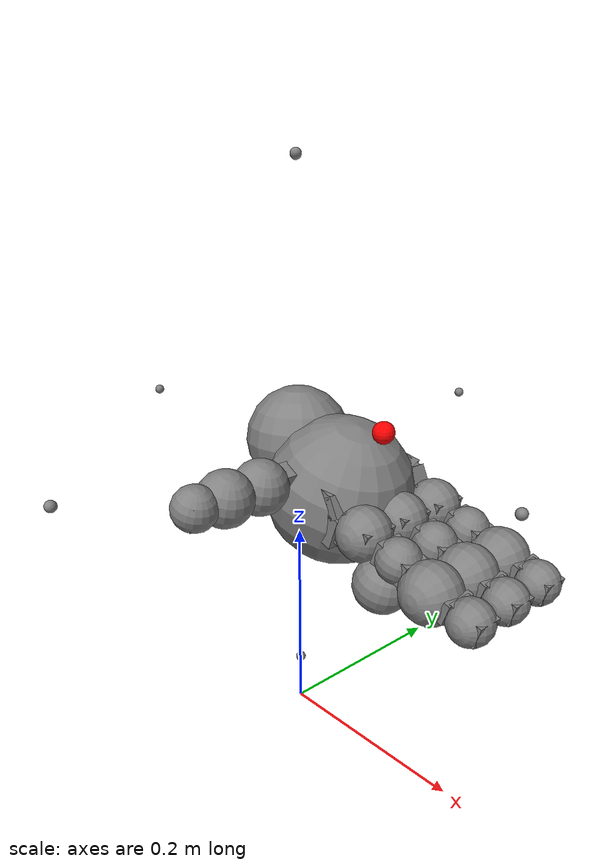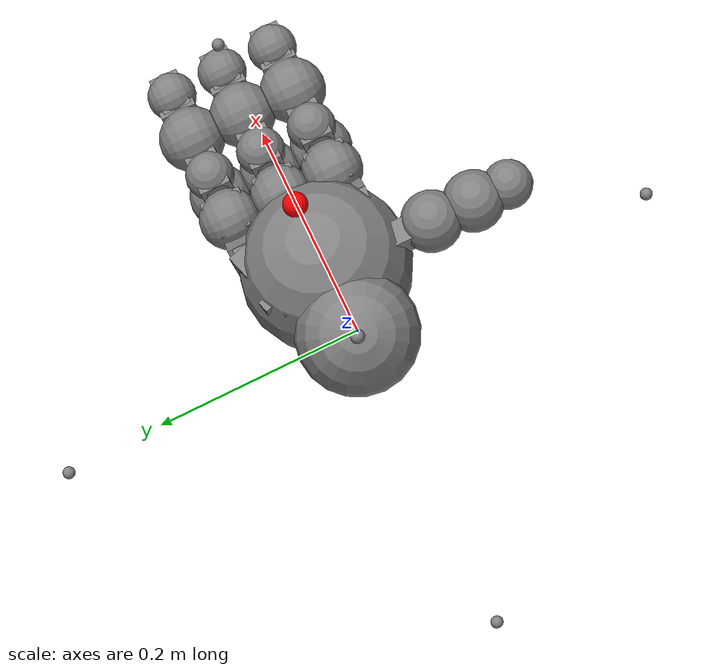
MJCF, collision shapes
<mujoco model="leap_rh_fabric_freejoint">
  <compiler angle="radian" autolimits="true" assetdir="../meshes/leap"/>

  <option timestep="0.01" integrator="implicitfast" cone="elliptic" impratio="100"/>

  <custom>
    <numeric data="30" name="max_contact_points"/>
    <numeric data="12" name="max_geom_pairs"/>
  </custom>

  <asset>
    <material name="black" rgba="0.2 0.2 0.2 1"/>
    <material name="gray" rgba="0.5 0.5 0.5 1"/>
    <mesh name="leap_mount" file="leap_mount.obj"/>

    <mesh name="palm" file="palm_right.obj"/>
    <mesh name="base" file="base.obj"/>
    <mesh name="proximal" file="proximal.obj"/>
    <mesh name="medial" file="medial.obj"/>
    <mesh name="distal" file="distal.obj"/>
    <mesh name="tip" file="tip.obj"/>
    <mesh name="thumb_base" file="thumb_base.obj"/>
    <mesh name="thumb_proximal" file="thumb_proximal.obj"/>
    <mesh name="thumb_distal" file="thumb_distal.obj"/>
    <mesh name="thumb_tip" file="thumb_tip.obj"/>
  </asset>

  <default>
    <default class="leap_rh">
      <geom group="3" friction="0.2" solref="0.02 1.5" solimp="0.9 0.99 0.001"/>
      <default class="visual">
        <geom group="2" type="mesh" contype="0" conaffinity="0" density="0" material="black"/>
      </default>
      <default class="tip">
        <geom size="0.01 0.012 0.016" pos="-0.0012969 -0.0335524 0.0145207"
              quat="0.703552 0.709596 -0.0292107 -0.0252203" type="box" friction="0.7 0.05 0.0002" rgba=".5 .5 .5 .3"/>
      </default>
      <default class="thumb_tip">
        <geom size="0.01 0.012 0.016" pos="-0.00127744 -0.0455619 -0.0144774"
              quat="0.708101 0.705072 -0.0294902 -0.024426" type="box" friction="0.7 0.05 0.0002" rgba=".5 .5 .5 .3"/>
      </default>

      <!-- armature = rotor inertia * gear ratio^2 = 1.7 * 1e-8 * 288*288 = 0.00149376 -->
      <!-- max torque = 0.2196 = 600/1000*0.366 -->
      <!-- frictionloss = rough guess, small ish value -->
      <joint axis="0 0 -1" damping="0.2" armature="0.00149376" actuatorfrcrange="-0.2196 0.2196" frictionloss="0.02"/>

      <default class="mcp">
        <position kp="3.0" inheritrange="1"/>
        <joint range="-0.314 2.23"/>
      </default>
      <default class="rot">
        <position kp="3.0" inheritrange="1"/>
        <joint range="-1.047 1.047"/>
      </default>
      <default class="pip">
        <position kp="3.0" inheritrange="1"/>
        <joint range="-0.506 1.885"/>
      </default>
      <default class="dip">
        <position kp="3.0" inheritrange="1"/>
        <joint range="-0.366 2.042"/>
      </default>
      <default class="thumb_cmc">
        <position kp="3.0" inheritrange="1"/>
        <joint range="-0.349 2.094"/>
      </default>
      <default class="thumb_axl">
        <position kp="3.0" inheritrange="1"/>
        <joint range="-0.349 2.094"/>
      </default>
      <default class="thumb_mcp">
        <position kp="3.0" inheritrange="1"/>
        <joint range="-0.47 2.443"/>
      </default>
      <default class="thumb_ipl">
        <position kp="3.0" inheritrange="1"/>
        <joint range="-1.34 1.88"/>
      </default>

      <default class="fabric">
        <geom type="sphere" contype="0" conaffinity="0" density="0" group="4"/>
      </default>

      <default class="translation">
        <position kp="80" dampratio="3" ctrlrange="-.5 .5"/>
        <general ctrlrange="-.5 .5"/>
      </default>
      <default class="rotation">
        <position kp="10" dampratio="1" ctrlrange="-1.571 1.571"/>
        <general ctrlrange="-1.571 1.571"/>
      </default>

    </default>
  </default>

  <contact>
    <!-- filter the palm from all other finger bodies except the tips -->
    <exclude body1="palm" body2="if_bs"/>
    <exclude body1="palm" body2="mf_bs"/>
    <exclude body1="palm" body2="rf_bs"/>
    <exclude body1="palm" body2="th_mp"/>

    <exclude body1="palm" body2="if_px"/>
    <exclude body1="palm" body2="mf_px"/>
    <exclude body1="palm" body2="rf_px"/>
    <exclude body1="palm" body2="th_bs"/>

    <exclude body1="palm" body2="if_md"/>
    <exclude body1="palm" body2="mf_md"/>
    <exclude body1="palm" body2="rf_md"/>
    <exclude body1="palm" body2="th_px"/>

    <!-- filter the mount from all finger bodies except the tips -->
    <exclude body1="leap_mount" body2="if_bs"/>
    <exclude body1="leap_mount" body2="mf_bs"/>
    <exclude body1="leap_mount" body2="rf_bs"/>
    <exclude body1="leap_mount" body2="th_mp"/>

    <exclude body1="leap_mount" body2="if_px"/>
    <exclude body1="leap_mount" body2="mf_px"/>
    <exclude body1="leap_mount" body2="rf_px"/>
    <exclude body1="leap_mount" body2="th_bs"/>

    <exclude body1="leap_mount" body2="if_md"/>
    <exclude body1="leap_mount" body2="mf_md"/>
    <exclude body1="leap_mount" body2="rf_md"/>
    <exclude body1="leap_mount" body2="th_px"/>

    <!-- none of the base fingertip geoms can touch each other -->
    <exclude body1="if_bs" body2="mf_bs"/>
    <exclude body1="if_bs" body2="rf_bs"/>
    <exclude body1="mf_bs" body2="rf_bs"/>

    <exclude body1="th_mp" body2="if_bs"/>
    <exclude body1="th_mp" body2="mf_bs"/>
    <exclude body1="th_mp" body2="rf_bs"/>
  </contact>

  <worldbody>
    <light name="spotlight" mode="targetbodycom" target="palm" pos="3 0 4"/>
    <body name="leap_mount" pos="0 0 0.3" quat="1 0 0 0" childclass="leap_rh">
      <site name="leap_base"/>
      <geom name="leap_mount_visual" pos="0 0 0" quat="1 0 0 0" mesh="leap_mount" class="visual" type="mesh"
            material="black"/>
      <geom name="leap_mount_collision_0" size="0.002 0.025 0.005" pos="0.0405 0.02 0.009"
            quat="0.57346234 0 0.81923192 0" type="box"/>
      <geom name="leap_mount_collision_1" size="0.005 0.005 0.005" pos="0.05 0.053 0.002"
            quat="0.4987168 0.64994038 -0.34910175 0.45495826" type="box"/>
      <site name="grasp_site" pos="0.11 0.0 0.03" size="0.01" rgba="1 0 0 1"/>

      <body name="leap_mount_fabric">
        <geom size="0.05" class="fabric"/>
      </body>
      <body name="palm" pos="0.124 -0.0305 -0.06045" quat="0 1 0 -0.175">
        <inertial pos="-0.049542 -0.042914 -0.010227" quat="0.565586 0.427629 -0.574956 0.408254" mass="0.237"
                  diaginertia="0.000407345 0.000304759 0.000180736"/>
        <geom name="palm_visual" pos="-0.02 0.02575 -0.0347" quat="1 0 0 0" class="visual" mesh="palm"/>
        <geom name="palm_collision_1" size="0.011 0.013 0.017" pos="-0.009 0.008 -0.011" type="box"/>
        <geom name="palm_collision_2" size="0.011 0.013 0.017" pos="-0.009 -0.037 -0.011" type="box"/>
        <geom name="palm_collision_3" size="0.011 0.013 0.017" pos="-0.009 -0.082 -0.011" type="box"/>
        <geom name="palm_collision_4" size="0.029 0.01 0.023" pos="-0.066 -0.078 -0.0115" quat="0.989016 0 0 -0.147806"
              type="box"/>
        <geom name="palm_collision_5" size="0.01 0.06 0.015" pos="-0.03 -0.035 -0.003" type="box"/>
        <geom name="palm_collision_6" size="0.005 0.06 0.01" pos="-0.032 -0.035 -0.024" quat="0.923956 0 0.382499 0"
              type="box"/>
        <geom name="palm_collision_7" size="0.012 0.058 0.023" pos="-0.048 -0.033 -0.0115" type="box"/>
        <geom name="palm_collision_8" size="0.022 0.026 0.023" pos="-0.078 -0.053 -0.0115" type="box"/>
        <geom name="palm_collision_9" size="0.002 0.018 0.017" pos="-0.098 -0.009 -0.006" type="box"/>
        <geom name="palm_collision_10" size="0.022 0.028 0.002" pos="-0.078 -0.003 0.01" type="box"/>
        <body name="palm_fabric" pos="-0.07 -0.03 0">
          <geom size="0.07" class="fabric"/>
        </body>
        <body name="if_bs" pos="-0.007 0.023 -0.0187" quat="0.5 0.5 0.5 -0.5">
          <inertial pos="-0.022516 0.033882 0.016359" quat="0.388092 0.677951 -0.247713 0.573067" mass="0.044"
                    diaginertia="1.74972e-05 1.61504e-05 7.21342e-06"/>
          <joint name="if_mcp" class="mcp"/>
          <geom name="if_bs_visual" pos="0.0084 0.0077 0.01465" quat="1 0 0 0" class="visual" mesh="base"/>
          <geom name="if_bs_collision" size="0.01 0.003 0.017" pos="0 0.018 0.0147" type="box"/>

          <body name="if_bs_fabric" pos="-0.005 0.005 0.015">
            <geom size="0.025" class="fabric"/>
          </body>
          <body name="if_px" pos="-0.0122 0.0381 0.0145" quat="0.500003 -0.5 -0.499997 0.5">
            <inertial pos="0.0075 -0.0002 -0.011" quat="0 0.707107 0 0.707107" mass="0.032"
                      diaginertia="4.8853e-06 4.3733e-06 3.0933e-06"/>
            <joint name="if_rot" class="rot"/>
            <geom name="if_px_visual" pos="0.0096 0.0002 0.0007" quat="0.500003 -0.5 -0.5 -0.499997" class="visual"
                  mesh="proximal"/>
            <geom name="if_px_collision" size="0.017 0.013 0.011" pos="0.0075 -0.0002 -0.011" type="box"/>

            <body name="if_px_fabric1" pos="0.0075 -0.0002 -0.011">
              <geom size="0.02" class="fabric"/>
            </body>
            <body name="if_px_fabric2" pos="0.001 -0.0002 0.021">
              <geom size="0.026" class="fabric"/>
            </body>
            <body name="if_md" pos="0.015 0.0143 -0.013" quat="0.500003 0.5 -0.5 0.499997">
              <inertial pos="0.0054215 -0.029148 0.015" quat="0.687228 0.687228 0.166487 0.166487" mass="0.037"
                        diaginertia="8.28004e-06 8.1598e-06 5.39516e-06"/>
              <joint name="if_pip" class="pip"/>
              <geom name="if_md_visual" pos="0.0211 -0.0084 0.0097" quat="2.67949e-08 -1 0 0" class="visual"
                    mesh="medial"/>
              <geom name="if_md_collision_1" size="0.008 0.003 0.013" pos="0 -0.02 0.015" type="box"/>
              <geom name="if_md_collision_2" size="0.017 0.011 0.013" pos="0.0075 -0.035 0.015" type="box"/>
              <body name="if_ds" pos="0 -0.0361 0.0002">
                <inertial pos="-0.0008794 -0.027019 0.014594" quat="0.702905 0.710643 -0.0212937 -0.0214203"
                          mass="0.016" diaginertia="3.71863e-06 3.02396e-06 1.6518e-06"/>
                <joint name="if_dip" class="dip"/>
                <geom name="if_ds_visual" pos="0.0132 -0.0061 0.0144" quat="2.67949e-08 1 0 0" class="visual"
                      mesh="distal"/>
                <geom name="if_ds_collision" size="0.01 0.003 0.015" pos="0 -0.017 0.015" type="box"/>
                <geom name="if_tip" class="tip"/>
                <geom type="mesh" mesh="tip" class="visual" material="gray"/>
                <site name="if_tip" pos="0 -0.05 0.015" group="4"/>
              </body>
              <body name="if_ds_fabric1" pos="0.005 -0.03 0.015">
                <geom size="0.027" class="fabric"/>
              </body>
              <body name="if_ds_fabric2" pos="0 -0.07 0.015">
                <geom size="0.02" class="fabric"/>
              </body>
            </body>
          </body>
        </body>
        <body name="mf_bs" pos="-0.0071 -0.0224 -0.0187" quat="0.500003 0.5 0.5 -0.499997">
          <inertial pos="-0.022516 0.033882 0.016359" quat="0.388092 0.677951 -0.247713 0.573067" mass="0.044"
                    diaginertia="1.74972e-05 1.61504e-05 7.21342e-06"/>
          <joint name="mf_mcp" class="mcp"/>
          <geom name="mf_bs_visual" pos="0.0084 0.0077 0.01465" quat="1 0 0 0" class="visual" mesh="base"/>
          <geom name="mf_bs_collision" size="0.01 0.003 0.017" pos="0 0.018 0.0147" type="box"/>

          <body name="mf_bs_fabric" pos="-0.005 0.005 0.015">
            <geom size="0.025" class="fabric"/>
          </body>
          <body name="mf_px" pos="-0.0122 0.0381 0.0145" quat="0.500003 -0.5 -0.499997 0.5">
            <inertial pos="0.0075 -0.0002 -0.011" quat="0 0.707107 0 0.707107" mass="0.032"
                      diaginertia="4.8853e-06 4.3733e-06 3.0933e-06"/>
            <joint name="mf_rot" class="rot"/>
            <geom name="mf_px_visual" pos="0.0096 0.0003 0.0007" quat="0.500003 -0.5 -0.5 -0.499997" class="visual"
                  mesh="proximal"/>
            <geom name="mf_px_collision" size="0.017 0.013 0.011" pos="0.0075 -0.0002 -0.011" type="box"/>

            <body name="mf_px_fabric1" pos="0.0075 -0.0002 -0.011">
              <geom size="0.02" class="fabric"/>
            </body>
            <body name="mf_px_fabric2" pos="0.001 -0.0002 0.021">
              <geom size="0.026" class="fabric"/>
            </body>
            <body name="mf_md" pos="0.015 0.0143 -0.013" quat="0.500003 0.5 -0.5 0.499997">
              <inertial pos="0.0054215 -0.029148 0.015" quat="0.687228 0.687228 0.166487 0.166487" mass="0.037"
                        diaginertia="8.28004e-06 8.1598e-06 5.39516e-06"/>
              <joint name="mf_pip" class="pip"/>
              <geom name="mf_md_visual" pos="0.0211 -0.0084 0.0097" quat="1.32679e-06 -1 0 0" class="visual"
                    mesh="medial"/>
              <geom name="mf_md_collision_1" size="0.008 0.003 0.013" pos="0 -0.02 0.015" type="box"/>
              <geom name="mf_md_collision_2" size="0.017 0.011 0.013" pos="0.0075 -0.035 0.015" type="box"/>
              <body name="mf_ds" pos="0 -0.0361 0.0002">
                <inertial pos="-0.0008794 -0.027019 0.014594" quat="0.702905 0.710643 -0.0212937 -0.0214203"
                          mass="0.016" diaginertia="3.71863e-06 3.02396e-06 1.6518e-06"/>
                <joint name="mf_dip" class="dip"/>
                <geom name="mf_ds_visual" pos="0.0132 -0.0061 0.0145" quat="1.32679e-06 1 0 0" class="visual"
                      mesh="distal"/>
                <geom name="mf_ds_collision" size="0.01 0.003 0.015" pos="0 -0.017 0.015" type="box"/>
                <geom name="mf_tip" class="tip"/>
                <geom type="mesh" mesh="tip" class="visual" material="gray"/>
                <site name="mf_tip" pos="0 -0.05 0.015" group="4"/>
              </body>
              <body name="mf_ds_fabric1" pos="0.005 -0.03 0.015">
                <geom size="0.027" class="fabric"/>
              </body>
              <body name="mf_ds_fabric2" pos="0 -0.07 0.015">
                <geom size="0.02" class="fabric"/>
              </body>
            </body>
          </body>
        </body>
        <body name="rf_bs" pos="-0.00709 -0.0678 -0.0187" quat="0.500003 0.5 0.5 -0.499997">
          <inertial pos="-0.022516 0.033882 0.016359" quat="0.388092 0.677951 -0.247713 0.573067" mass="0.044"
                    diaginertia="1.74972e-05 1.61504e-05 7.21342e-06"/>
          <joint name="rf_mcp" class="mcp"/>
          <geom name="rf_bs_visual" pos="0.0084 0.0077 0.01465" quat="1 0 0 0" class="visual" mesh="base"/>
          <geom name="rf_bs_collision" size="0.01 0.003 0.017" pos="0 0.018 0.0147" type="box"/>

          <body name="rf_bs_fabric" pos="-0.005 0.005 0.015">
            <geom size="0.025" class="fabric"/>
          </body>
          <body name="rf_px" pos="-0.0122 0.0381 0.0145" quat="0.500003 -0.5 -0.499997 0.5">
            <inertial pos="0.0075 -0.0002 -0.011" quat="0 0.707107 0 0.707107" mass="0.032"
                      diaginertia="4.8853e-06 4.3733e-06 3.0933e-06"/>
            <joint name="rf_rot" class="rot"/>
            <geom name="rf_px_visual" pos="0.0096 0.0003 0.0007" quat="0.500003 -0.5 -0.5 -0.499997" class="visual"
                  mesh="proximal"/>
            <geom name="rf_px_collision" size="0.017 0.013 0.011" pos="0.0075 -0.0002 -0.011" type="box"/>

            <body name="rf_px_fabric1" pos="0.0075 -0.0002 -0.011">
              <geom size="0.02" class="fabric"/>
            </body>
            <body name="rf_px_fabric2" pos="0.001 -0.0002 0.021">
              <geom size="0.026" class="fabric"/>
            </body>
            <body name="rf_md" pos="0.015 0.0143 -0.013" quat="0.500003 0.5 -0.5 0.499997">
              <inertial pos="0.0054215 -0.029148 0.015" quat="0.687228 0.687228 0.166487 0.166487" mass="0.037"
                        diaginertia="8.28004e-06 8.1598e-06 5.39516e-06"/>
              <joint name="rf_pip" class="pip"/>
              <geom name="rf_md_visual" pos="0.0211 -0.0084 0.0097" quat="0 -1 0 0" class="visual" mesh="medial"/>
              <geom name="rf_md_collision_1" size="0.008 0.003 0.013" pos="0 -0.02 0.015" type="box"/>
              <geom name="rf_md_collision_2" size="0.017 0.011 0.013" pos="0.0075 -0.035 0.015" type="box"/>
              <body name="rf_ds" pos="0 -0.03609 0.0002">
                <inertial pos="-0.0008794 -0.027019 0.014594" quat="0.702905 0.710643 -0.0212937 -0.0214203"
                          mass="0.016" diaginertia="3.71863e-06 3.02396e-06 1.6518e-06"/>
                <joint name="rf_dip" class="dip"/>
                <geom name="rf_ds_visual" pos="0.0132 -0.0061 0.0145" quat="0 1 0 0" class="visual" mesh="distal"/>
                <geom name="rf_ds_collision" size="0.01 0.003 0.015" pos="0 -0.017 0.015" type="box"/>
                <geom name="rf_tip" class="tip"/>
                <geom type="mesh" mesh="tip" class="visual" material="gray"/>
                <site name="rf_tip" pos="0 -0.05 0.015" group="4"/>
              </body>
              <body name="rf_ds_fabric1" pos="0.005 -0.03 0.015">
                <geom size="0.027" class="fabric"/>
              </body>
              <body name="rf_ds_fabric2" pos="0 -0.07 0.015">
                <geom size="0.02" class="fabric"/>
              </body>
            </body>
          </body>
        </body>
        <body name="th_mp" pos="-0.0693 -0.0012 -0.0216" quat="0.707109 0 0.707105 0">
          <inertial pos="0.0075 -0.0002 -0.011" quat="0 0.707107 0 0.707107" mass="0.032"
                    diaginertia="4.8853e-06 4.3733e-06 3.0933e-06"/>
          <joint name="th_cmc" class="thumb_cmc"/>
          <geom name="th_mp_visual" pos="-0.0053 0.0003 0.00078" quat="0.500003 -0.5 -0.5 -0.499997" class="visual"
                mesh="proximal"/>
          <geom name="th_mp_collision" size="0.017 0.013 0.011" pos="-0.0075 -0.0002 -0.011" type="box"/>
          <body name="th_bs" pos="0 0.0143 -0.013" quat="0.500003 0.5 -0.5 0.499997">
            <inertial pos="0 0 -0.0070806" quat="0.707107 0.707107 0 0" mass="0.003"
                      diaginertia="6.1932e-07 5.351e-07 2.1516e-07"/>
            <joint name="th_axl" class="thumb_axl"/>
            <geom name="th_bs_collision" pos="0.01196 0 -0.0158" quat="0.707109 0.707105 0 0" class="visual"
                  mesh="thumb_base"/>
            <body name="th_px" pos="0 0.0145 -0.017" quat="0.707109 -0.707105 0 0">
              <inertial pos="-0.0020593 0.015912 -0.013733" quat="0.698518 0.697382 -0.104933 0.121324" mass="0.038"
                        diaginertia="9.87104e-06 9.32653e-06 4.36203e-06"/>
              <joint name="th_mcp" class="thumb_mcp"/>
              <geom name="th_px_visual" pos="0.0439 0.0579 -0.0086" quat="1 0 0 0" class="visual"
                    mesh="thumb_proximal"/>
              <geom name="th_px_collision" size="0.01 0.02 0.012" pos="0 0.0105 -0.014" type="box"/>

              <body name="th_px_fabric" pos="0 0.03 -0.015">
                <geom size="0.025" class="fabric"/>
              </body>
              <body name="th_ds" pos="0 0.0466 0.0002" quat="1.32679e-06 0 0 1">
                <inertial pos="0.00096191 -0.024203 -0.014419" quat="0.35287 0.311272 -0.632839 0.614904" mass="0.049"
                          diaginertia="2.08591e-05 2.0402e-05 4.71335e-06"/>
                <joint name="th_ipl" class="thumb_ipl"/>
                <geom name="th_ds_visual" pos="0.0625 0.0784 0.0489" quat="1 0 0 0" class="visual" mesh="thumb_distal"/>
                <geom name="th_ds_collision" size="0.01 0.018 0.012" pos="0 -0.0085 -0.015" type="box"/>
                <geom name="th_tip" class="thumb_tip"/>
                <site name="th_tip" pos="0 -0.06 -0.015" group="4"/>
                <geom type="mesh" mesh="thumb_tip" class="visual" material="gray"/>

                <body name="th_ds_fabric1" pos="0 -0.02 -0.015">
                  <geom size="0.025" class="fabric"/>
                </body>
                <body name="th_ds_fabric2" pos="0 -0.05 -0.015">
                  <geom size="0.02" class="fabric"/>
                </body>
              </body>
            </body>
          </body>
        </body>
      </body>

      <!-- Fabric orientation points -->
      <body name="base_x" pos="0.25 0 0">
        <geom size="0.005" class="fabric"/>
        <inertial pos="0 0 0" quat="0.5 0.5 -0.5 0.5" mass="0.04" diaginertia="6.125e-05 5.1458e-05 5.1458e-05"/>
      </body>
      <body name="base_x_neg" pos="-0.25 0 0">
        <geom size="0.005" class="fabric"/>
        <inertial pos="0 0 0" quat="0.5 0.5 -0.5 0.5" mass="0.04" diaginertia="6.125e-05 5.1458e-05 5.1458e-05"/>
      </body>
      <body name="base_y" pos="0 0.25 0">
        <geom size="0.005" class="fabric"/>
        <inertial pos="0 0 0" quat="0.5 0.5 -0.5 0.5" mass="0.04" diaginertia="6.125e-05 5.1458e-05 5.1458e-05"/>
      </body>
      <body name="base_y_neg" pos="0 -0.25 0">
        <geom size="0.005" class="fabric"/>
        <inertial pos="0 0 0" quat="0.5 0.5 -0.5 0.5" mass="0.04" diaginertia="6.125e-05 5.1458e-05 5.1458e-05"/>
      </body>
      <body name="base_z" pos="0 0 0.25">
        <geom size="0.005" class="fabric"/>
        <inertial pos="0 0 0" quat="0.5 0.5 -0.5 0.5" mass="0.04" diaginertia="6.125e-05 5.1458e-05 5.1458e-05"/>
      </body>
      <body name="base_z_neg" pos="0 0 -0.25">
        <geom size="0.005" class="fabric"/>
        <inertial pos="0 0 0" quat="0.5 0.5 -0.5 0.5" mass="0.04" diaginertia="6.125e-05 5.1458e-05 5.1458e-05"/>
      </body>
    </body>
  </worldbody>

  <actuator>
    <position name="if_mcp_act" joint="if_mcp" class="mcp"/>
    <position name="if_rot_act" joint="if_rot" class="rot"/>
    <position name="if_pip_act" joint="if_pip" class="pip"/>
    <position name="if_dip_act" joint="if_dip" class="dip"/>
    <position name="mf_mcp_act" joint="mf_mcp" class="mcp"/>
    <position name="mf_rot_act" joint="mf_rot" class="rot"/>
    <position name="mf_pip_act" joint="mf_pip" class="pip"/>
    <position name="mf_dip_act" joint="mf_dip" class="dip"/>
    <position name="rf_mcp_act" joint="rf_mcp" class="mcp"/>
    <position name="rf_rot_act" joint="rf_rot" class="rot"/>
    <position name="rf_pip_act" joint="rf_pip" class="pip"/>
    <position name="rf_dip_act" joint="rf_dip" class="dip"/>
    <position name="th_cmc_act" joint="th_cmc" class="thumb_cmc"/>
    <position name="th_axl_act" joint="th_axl" class="thumb_axl"/>
    <position name="th_mcp_act" joint="th_mcp" class="thumb_mcp"/>
    <position name="th_ipl_act" joint="th_ipl" class="thumb_ipl"/>
  </actuator>
</mujoco>
